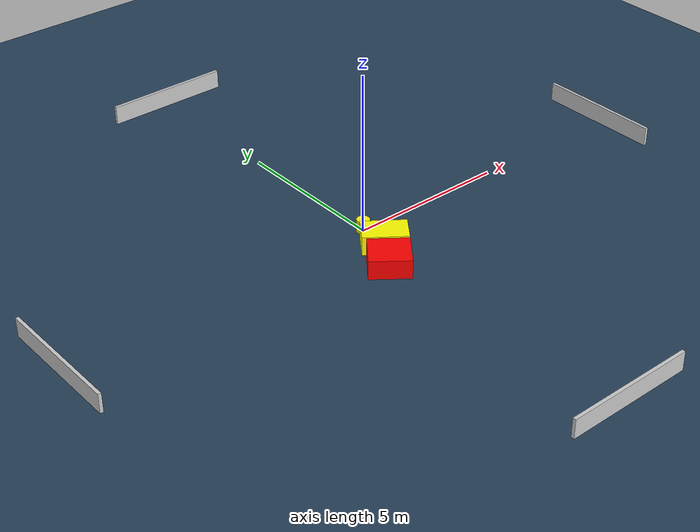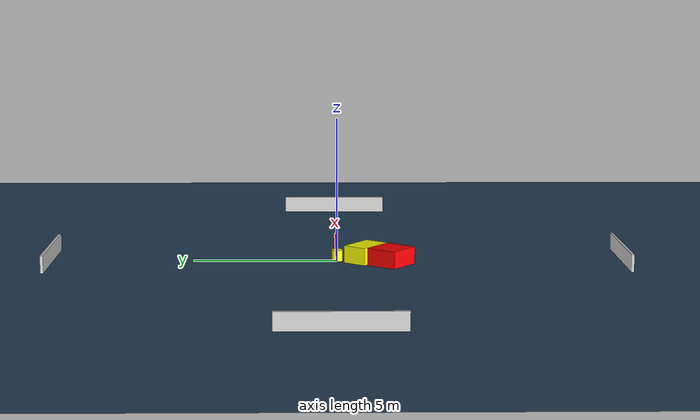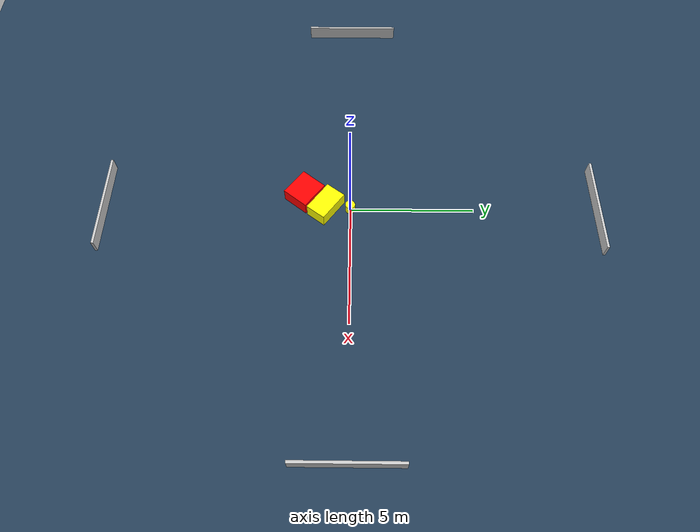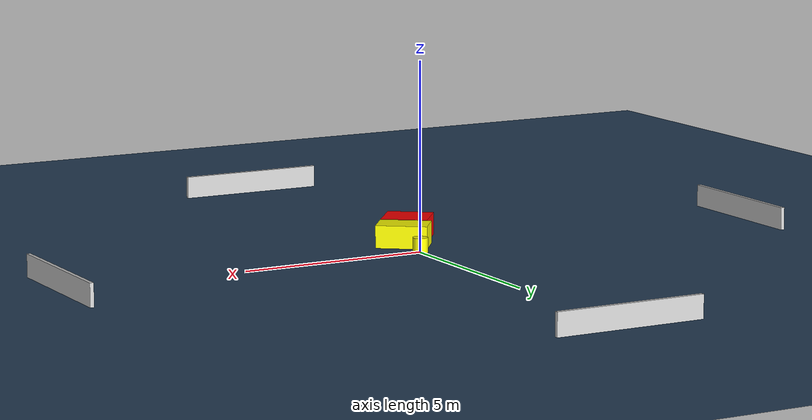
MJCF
<?xml version="1.0" ?>
<mujoco model="generated_environment">
  <option timestep="0.01" integrator="RK4" cone="elliptic"/>
  <default>
    <geom density="1"/>
  </default>
  <asset>
    <texture builtin="gradient" height="3072" name="skybox" rgb1="0.3 0.5 0.7" rgb2="0 0 0" type="skybox" width="512"/>
    <texture builtin="checker" height="300" name="groundplane" rgb1="0.2 0.3 0.4" rgb2="0.1 0.2 0.3" type="2d" width="300"/>
    <material name="groundplane" reflectance="0.2" texrepeat="5 5" texture="groundplane"/>
  </asset>
  <worldbody>
    <light dir="0 0 -1" directional="true" pos="0 0 1.5"/>
    <geom condim="3" friction="0.5 0.005 0.001" material="groundplane" name="floor" pos="0 0 0" size="0 0 0.05" type="plane"/>
    <body name="walls">
      <geom name="wall_1" condim="4" pos="-10.0 0.0 0.3" rgba="0.800000011920929 0.800000011920929 0.800000011920929 1.0" size="0.05 2.0 0.3" type="box"/>
      <geom name="wall_2" condim="4" pos="10.0 0.0 0.3" rgba="0.800000011920929 0.800000011920929 0.800000011920929 1.0" size="0.05 2.0 0.3" type="box"/>
      <geom name="wall_3" condim="4" pos="0.0 -10.0 0.3" rgba="0.800000011920929 0.800000011920929 0.800000011920929 1.0" size="2.0 0.05 0.3" type="box"/>
      <geom name="wall_4" condim="4" pos="0.0 10.0 0.3" rgba="0.800000011920929 0.800000011920929 0.800000011920929 1.0" size="2.0 0.05 0.3" type="box"/>
    </body>
    <body name="robot">
      <joint name="joint_x" type="slide" pos="0 0 0" axis="1 0 0"/>
      <joint name="joint_y" type="slide" pos="0 0 0" axis="0 1 0"/>
      <geom name="robot" type="cylinder" pos="0.0 0.0 0.2" size="0.2 0.2 0.0" mass="5.0" friction="1.0 0.005 0.0001" condim="4" rgba="1.0 1.0 0.0 1.0"/>
    </body>
    <body name="obstacle_1_movable">
      <geom name="obstacle_1_movable" condim="4" pos="-0.0516534707026716 -0.9935141880865297 0.3" euler="0 0 233.31141804688372" friction="0.0 0.005 0.001" rgba="1.0 1.0 0.0 1.0" size="0.43103174093138374 0.6777902715813691 0.3" type="box" mass="0.1"/>
      <joint type="free"/>
    </body>
    <body name="obstacle_2_static">
      <geom name="obstacle_2_static" condim="4" pos="-0.646116406437316 -1.872096690273794 0.3" euler="0 0 52.093757642670944" friction="0.0 0.005 0.001" rgba="1.0 0.0 0.0 1.0" size="0.5653623685455762 0.6156306229716996 0.3" type="box"/>
    </body>
  </worldbody>
  <actuator>
    <motor name="actuator_x" joint="joint_x" gear="1" ctrlrange="-1 1"/>
    <motor name="actuator_y" joint="joint_y" gear="1" ctrlrange="-1 1"/>
  </actuator>
</mujoco>
